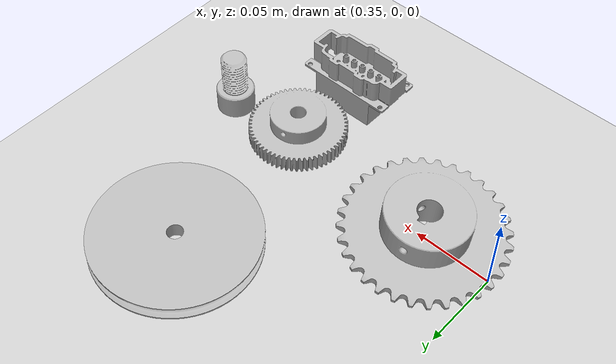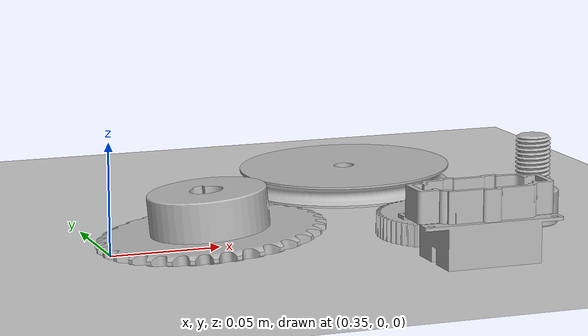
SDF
<sdf version="1.6">
 <world name="default">
  <light name="sun" type="directional">
   <pose>0 0 10 0 -0 0</pose>
   <diffuse>0.8 0.8 0.8 1</diffuse>
   <specular>0.2 0.2 0.2 1</specular>
   <attenuation>
    <range>1000</range>
    <constant>0.9</constant>
    <linear>0.01</linear>
    <quadratic>0.001</quadratic>
   </attenuation>
   <direction>-0.5 0.1 -0.9</direction>
  </light>
  <model name="ground_plane">
   <static>1</static>
   <link name="link">
    <collision name="collision">
     <geometry><plane><normal>0 0 1</normal><size>100 100</size></plane></geometry>
     <surface>
      <contact><collide_bitmask>65535</collide_bitmask></contact>
      <friction><ode><mu>100</mu><mu2>50</mu2></ode></friction>
     </surface>
    </collision>
    <visual name="visual">
     <cast_shadows>0</cast_shadows>
     <geometry><plane><normal>0 0 1</normal><size>100 100</size></plane></geometry>
     <material>
      <script><uri>file://media/materials/scripts/gazebo.material</uri><name>Gazebo/Grey</name></script>
     </material>
    </visual>
   </link>
  </model>
  <gravity>0 0 -9.8</gravity>
  <magnetic_field>6e-06 2.3e-05 -4.2e-05</magnetic_field>
  <atmosphere type="adiabatic"/>
  <physics name="default_physics" default="0" type="ode">
   <max_step_size>0.001</max_step_size>
   <real_time_factor>1</real_time_factor>
   <real_time_update_rate>1000</real_time_update_rate>
  </physics>
  <scene><ambient>0.4 0.4 0.4 1</ambient><background>0.7 0.7 0.7 1</background><shadows>1</shadows></scene>
  <audio><device>default</device></audio>
  <spherical_coordinates>
   <surface_model>EARTH_WGS84</surface_model>
   <latitude_deg>0</latitude_deg>
   <longitude_deg>0</longitude_deg>
   <elevation>0</elevation>
   <heading_deg>0</heading_deg>
  </spherical_coordinates>
  <model name="gear">
   <link name="body">
    <inertial>
     <mass>0.01</mass>
     <pose>0.000135 -0.000675 0.001232 0 -0 0</pose>
     <inertia><ixx>0</ixx><ixy>0</ixy><ixz>0</ixz><iyy>0</iyy><iyz>0</iyz><izz>0</izz></inertia>
    </inertial>
    <visual name="visual">
     <geometry><mesh><uri>model://industrial-components/gear/gear.dae</uri></mesh></geometry>
    </visual>
    <collision name="collision">
     <geometry><mesh><uri>model://industrial-components/gear/gear.dae</uri></mesh></geometry>
     <surface>
      <friction><ode><mu>0.8</mu><mu2>0.8</mu2><slip1>0</slip1><slip2>0</slip2></ode></friction>
      <contact><ode><kp>1e+06</kp><kd>1</kd><max_vel>0</max_vel></ode></contact>
     </surface>
    </collision>
   </link>
   <pose>0.502797 -0.010363 0.00619 -2.2e-05 2.4e-05 -0.000514</pose>
  </model>
  <model name="waterproof">
   <link name="body">
    <inertial>
     <mass>0.01</mass>
     <pose>3.2e-05 -1.8e-05 -0.005774 0 -0 0</pose>
     <inertia><ixx>0</ixx><ixy>0</ixy><ixz>0</ixz><iyy>0</iyy><iyz>0</iyz><izz>0</izz></inertia>
    </inertial>
    <visual name="visual">
     <geometry><mesh><uri>model://industrial-components/waterproof/waterproof.dae</uri></mesh></geometry>
    </visual>
    <collision name="collision">
     <geometry><mesh><uri>model://industrial-components/waterproof/waterproof.dae</uri></mesh></geometry>
     <surface>
      <friction><ode><mu>0.8</mu><mu2>0.8</mu2><slip1>0</slip1><slip2>0</slip2></ode></friction>
      <contact><ode><kp>1e+06</kp><kd>1</kd><max_vel>0</max_vel></ode></contact>
     </surface>
    </collision>
   </link>
   <pose>0.49741 -0.061526 0.019298 4.5e-05 -1.2e-05 0.00016</pose>
  </model>
  <model name="sprocket_l">
   <link name="body">
    <inertial>
     <mass>0.01</mass>
     <pose>-0.001767 -0.000343 0.003946 0 -0 0</pose>
     <inertia><ixx>0</ixx><ixy>0</ixy><ixz>0</ixz><iyy>0</iyy><iyz>0</iyz><izz>0</izz></inertia>
    </inertial>
    <visual name="visual">
     <geometry><mesh><uri>model://industrial-components/sprocket_l/sprocket_l.dae</uri></mesh></geometry>
    </visual>
    <collision name="collision">
     <geometry><mesh><uri>model://industrial-components/sprocket_l/sprocket_l.dae</uri></mesh></geometry>
     <surface>
      <friction><ode><mu>0.8</mu><mu2>0.8</mu2><slip1>0</slip1><slip2>0</slip2></ode></friction>
      <contact><ode><kp>1e+06</kp><kd>1</kd><max_vel>0</max_vel></ode></contact>
     </surface>
    </collision>
   </link>
   <pose>0.396145 -0.000191 0.008078 0.042743 0.137574 0.003099</pose>
  </model>
  <model name="r_pulley_l">
   <link name="body">
    <inertial>
     <mass>0.01</mass>
     <pose>5.2e-05 9e-06 0.000148 0 -0 0</pose>
     <inertia><ixx>0</ixx><ixy>0</ixy><ixz>0</ixz><iyy>0</iyy><iyz>0</iyz><izz>0</izz></inertia>
    </inertial>
    <visual name="visual">
     <geometry><mesh><uri>model://industrial-components/r_pulley_l/r_pulley_l.dae</uri></mesh></geometry>
    </visual>
    <collision name="collision">
     <geometry><mesh><uri>model://industrial-components/r_pulley_l/r_pulley_l.dae</uri></mesh></geometry>
     <surface>
      <friction><ode><mu>0.8</mu><mu2>0.8</mu2><slip1>0</slip1><slip2>0</slip2></ode></friction>
      <contact><ode><kp>1e+06</kp><kd>1</kd><max_vel>0</max_vel></ode></contact>
     </surface>
    </collision>
   </link>
   <pose>0.496925 0.098648 0.006274 -0.067081 0.197016 -0.006938</pose>
  </model>
  <model name="screw">
   <link name="body">
    <inertial>
     <mass>0.01</mass>
     <pose>-8.8e-05 3.2e-05 -0.009685 0 -0 0</pose>
     <inertia><ixx>0</ixx><ixy>0</ixy><ixz>0</ixz><iyy>0</iyy><iyz>0</iyz><izz>0</izz></inertia>
    </inertial>
    <visual name="visual">
     <geometry><mesh><uri>model://industrial-components/screw/screw.dae</uri></mesh></geometry>
    </visual>
    <collision name="collision">
     <geometry><mesh><uri>model://industrial-components/screw/screw.dae</uri></mesh></geometry>
     <surface>
      <friction><ode><mu>0.8</mu><mu2>0.8</mu2><slip1>0</slip1><slip2>0</slip2></ode></friction>
      <contact><ode><kp>1e+06</kp><kd>1</kd><max_vel>0</max_vel></ode></contact>
     </surface>
    </collision>
   </link>
   <pose>0.54999 -0.00344 0.027203 -1.7e-05 9.8e-05 4.6e-05</pose>
  </model>
 </world>
</sdf>
